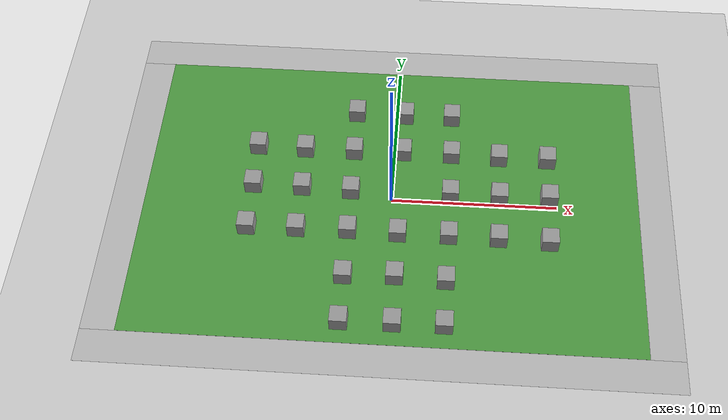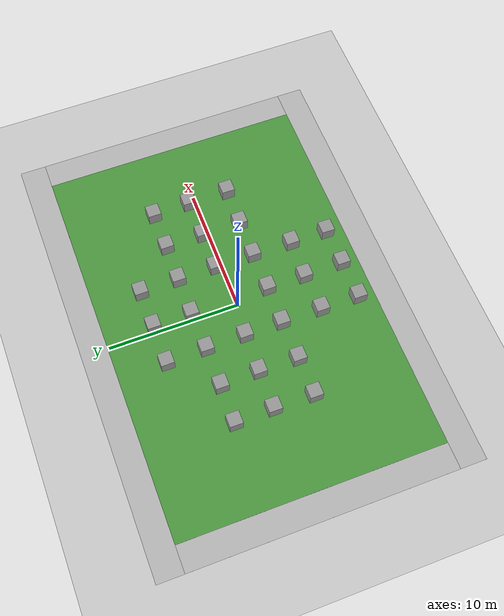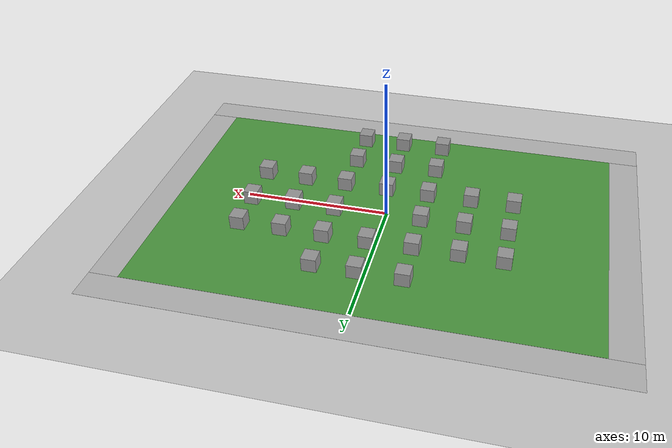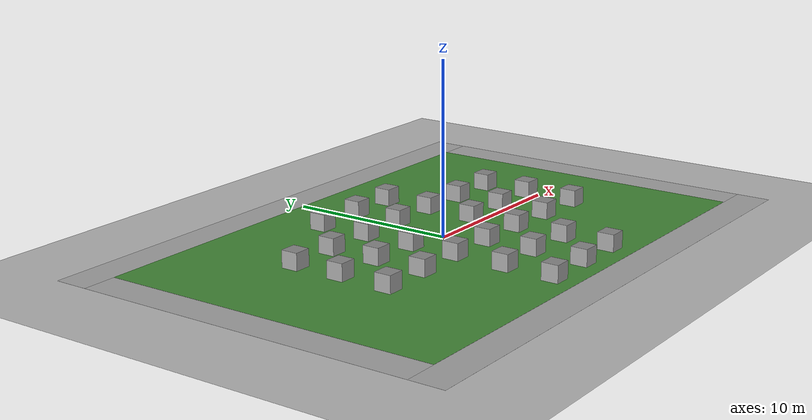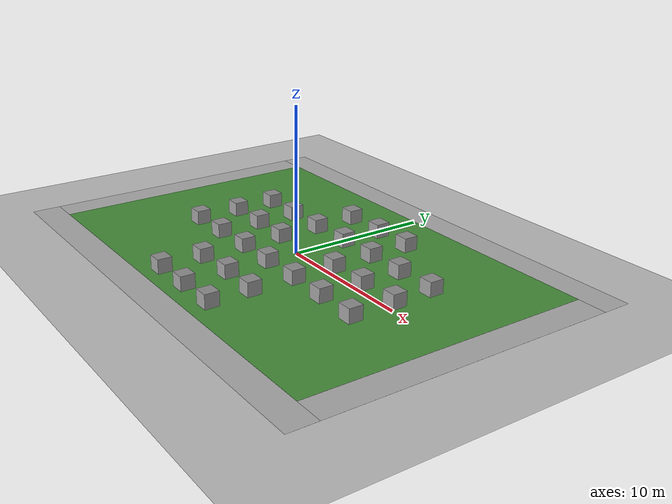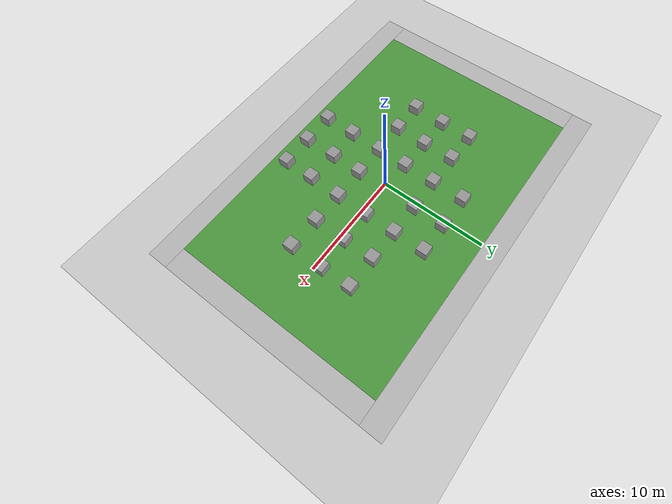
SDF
<sdf version="1.6">
 <world name="default">
  <plugin name="ardupilot_sitl_gazebo_plugin" filename="libardupilot_sitl_gazebo_plugin_rover.so">
   <UAV_MODEL>rover</UAV_MODEL>
  </plugin>
  <light name="sun" type="directional">
   <pose>0 0 10 0 -0 0</pose>
   <diffuse>0.8 0.8 0.8 1</diffuse>
   <specular>0.2 0.2 0.2 1</specular>
   <attenuation>
    <range>1000</range>
    <constant>0.9</constant>
    <linear>0.01</linear>
    <quadratic>0.001</quadratic>
   </attenuation>
   <direction>-0.5 0.1 -0.9</direction>
  </light>
  <model name="ground_plane">
   <static>1</static>
   <link name="link">
    <collision name="collision">
     <geometry><plane><normal>0 0 1</normal><size>100 100</size></plane></geometry>
     <surface><friction><ode><mu>100</mu><mu2>50</mu2></ode></friction></surface>
    </collision>
    <visual name="visual">
     <cast_shadows>0</cast_shadows>
     <geometry><plane><normal>0 0 1</normal><size>100 100</size></plane></geometry>
     <material>
      <script><uri>file://media/materials/scripts/gazebo.material</uri><name>Gazebo/Grey</name></script>
     </material>
    </visual>
   </link>
  </model>
  <gravity>0 0 -9.8</gravity>
  <magnetic_field>6e-06 2.3e-05 -4.2e-05</magnetic_field>
  <atmosphere type="adiabatic"/>
  <physics name="default_physics" default="0" type="ode">
   <max_step_size>0.001</max_step_size>
   <real_time_factor>1</real_time_factor>
   <real_time_update_rate>1000</real_time_update_rate>
  </physics>
  <scene><ambient>0.4 0.4 0.4 1</ambient><background>0.7 0.7 0.7 1</background><shadows>1</shadows></scene>
  <spherical_coordinates>
   <surface_model>EARTH_WGS84</surface_model>
   <latitude_deg>0</latitude_deg>
   <longitude_deg>0</longitude_deg>
   <elevation>0</elevation>
   <heading_deg>0</heading_deg>
  </spherical_coordinates>
  <model name="robocup_3d_field">
   <static>1</static>
   <link name="field">
    <pose>0 0 0.01 0 -0 0</pose>
    <collision name="collision">
     <geometry><plane><normal>0 0 1</normal><size>30 20</size></plane></geometry>
     <surface><friction><ode><mu>100</mu><mu2>50</mu2></ode></friction></surface>
    </collision>
    <visual name="base1">
     <pose>0 11 0.001 0 -0 0</pose>
     <cast_shadows>0</cast_shadows>
     <geometry><plane><normal>0 0 1</normal><size>34 2</size></plane></geometry>
     <material>
      <script>
       <uri>model://robocup_3Dsim_field/materials/scripts/</uri>
       <uri>model://robocup_3Dsim_field/materials/textures/</uri>
       <name>RoboCup/FieldBorder</name>
      </script>
     </material>
    </visual>
    <visual name="base2">
     <pose>0 -11 0.001 0 -0 0</pose>
     <cast_shadows>0</cast_shadows>
     <geometry><plane><normal>0 0 1</normal><size>34 2</size></plane></geometry>
     <material>
      <script>
       <uri>model://robocup_3Dsim_field/materials/scripts/</uri>
       <uri>model://robocup_3Dsim_field/materials/textures/</uri>
       <name>RoboCup/FieldBorder</name>
      </script>
     </material>
    </visual>
    <visual name="base3">
     <pose>16 0 0.001 0 -0 0</pose>
     <cast_shadows>0</cast_shadows>
     <geometry><plane><normal>0 0 1</normal><size>2 20</size></plane></geometry>
     <material>
      <script>
       <uri>model://robocup_3Dsim_field/materials/scripts/</uri>
       <uri>model://robocup_3Dsim_field/materials/textures/</uri>
       <name>RoboCup/FieldBorder</name>
      </script>
     </material>
    </visual>
    <visual name="base4">
     <pose>-16 0 0.001 0 -0 0</pose>
     <cast_shadows>0</cast_shadows>
     <geometry><plane><normal>0 0 1</normal><size>2 20</size></plane></geometry>
     <material>
      <script>
       <uri>model://robocup_3Dsim_field/materials/scripts/</uri>
       <uri>model://robocup_3Dsim_field/materials/textures/</uri>
       <name>RoboCup/FieldBorder</name>
      </script>
     </material>
    </visual>
    <visual name="carpet">
     <cast_shadows>0</cast_shadows>
     <geometry><plane><normal>0 0 1</normal><size>30 20</size></plane></geometry>
     <material>
      <script>
       <uri>model://robocup_3Dsim_field/materials/scripts/</uri>
       <uri>model://robocup_3Dsim_field/materials/textures/</uri>
       <name>RoboCup/Grass</name>
      </script>
     </material>
    </visual>
   </link>
   <pose>-0.031698 0.111229 0 0 -0 0</pose>
  </model>
  <model name="unit_box">
   <pose>3.48768 -8.49423 0.51 0 -0 0</pose>
   <link name="link">
    <inertial>
     <mass>1</mass>
     <inertia>
      <ixx>0.166667</ixx>
      <ixy>0</ixy>
      <ixz>0</ixz>
      <iyy>0.166667</iyy>
      <iyz>0</iyz>
      <izz>0.166667</izz>
     </inertia>
    </inertial>
    <collision name="collision"><geometry><box><size>1 1 1</size></box></geometry></collision>
    <visual name="visual">
     <geometry><box><size>1 1 1</size></box></geometry>
     <material>
      <script><name>Gazebo/Grey</name><uri>file://media/materials/scripts/gazebo.material</uri></script>
     </material>
    </visual>
   </link>
  </model>
  <model name="unit_box_0">
   <pose>0.513093 -2.52001 0.51 0 -0 0</pose>
   <link name="link">
    <inertial>
     <mass>1</mass>
     <inertia>
      <ixx>0.166667</ixx>
      <ixy>0</ixy>
      <ixz>0</ixz>
      <iyy>0.166667</iyy>
      <iyz>0</iyz>
      <izz>0.166667</izz>
     </inertia>
    </inertial>
    <collision name="collision"><geometry><box><size>1 1 1</size></box></geometry></collision>
    <visual name="visual">
     <geometry><box><size>1 1 1</size></box></geometry>
     <material>
      <script><name>Gazebo/Grey</name><uri>file://media/materials/scripts/gazebo.material</uri></script>
     </material>
    </visual>
   </link>
  </model>
  <model name="unit_box_1">
   <pose>0.519088 3.50905 0.51 0 -0 0</pose>
   <link name="link">
    <inertial>
     <mass>1</mass>
     <inertia>
      <ixx>0.166667</ixx>
      <ixy>0</ixy>
      <ixz>0</ixz>
      <iyy>0.166667</iyy>
      <iyz>0</iyz>
      <izz>0.166667</izz>
     </inertia>
    </inertial>
    <collision name="collision"><geometry><box><size>1 1 1</size></box></geometry></collision>
    <visual name="visual">
     <geometry><box><size>1 1 1</size></box></geometry>
     <material>
      <script><name>Gazebo/Grey</name><uri>file://media/materials/scripts/gazebo.material</uri></script>
     </material>
    </visual>
   </link>
  </model>
  <model name="unit_box_2">
   <pose>-2.47103 -2.46109 0.51 0 -0 0</pose>
   <link name="link">
    <inertial>
     <mass>1</mass>
     <inertia>
      <ixx>0.166667</ixx>
      <ixy>0</ixy>
      <ixz>0</ixz>
      <iyy>0.166667</iyy>
      <iyz>0</iyz>
      <izz>0.166667</izz>
     </inertia>
    </inertial>
    <collision name="collision"><geometry><box><size>1 1 1</size></box></geometry></collision>
    <visual name="visual">
     <geometry><box><size>1 1 1</size></box></geometry>
     <material>
      <script><name>Gazebo/Grey</name><uri>file://media/materials/scripts/gazebo.material</uri></script>
     </material>
    </visual>
   </link>
  </model>
  <model name="unit_box_3">
   <pose>-2.48524 -5.58628 0.51 0 -0 0</pose>
   <link name="link">
    <inertial>
     <mass>1</mass>
     <inertia>
      <ixx>0.166667</ixx>
      <ixy>0</ixy>
      <ixz>0</ixz>
      <iyy>0.166667</iyy>
      <iyz>0</iyz>
      <izz>0.166667</izz>
     </inertia>
    </inertial>
    <collision name="collision"><geometry><box><size>1 1 1</size></box></geometry></collision>
    <visual name="visual">
     <geometry><box><size>1 1 1</size></box></geometry>
     <material>
      <script><name>Gazebo/Grey</name><uri>file://media/materials/scripts/gazebo.material</uri></script>
     </material>
    </visual>
   </link>
  </model>
  <model name="unit_box_4">
   <pose>-2.49751 0.415021 0.51 0 -0 0</pose>
   <link name="link">
    <inertial>
     <mass>1</mass>
     <inertia>
      <ixx>0.166667</ixx>
      <ixy>0</ixy>
      <ixz>0</ixz>
      <iyy>0.166667</iyy>
      <iyz>0</iyz>
      <izz>0.166667</izz>
     </inertia>
    </inertial>
    <collision name="collision"><geometry><box><size>1 1 1</size></box></geometry></collision>
    <visual name="visual">
     <geometry><box><size>1 1 1</size></box></geometry>
     <material>
      <script><name>Gazebo/Grey</name><uri>file://media/materials/scripts/gazebo.material</uri></script>
     </material>
    </visual>
   </link>
  </model>
  <model name="unit_box_5">
   <pose>-2.51887 3.42572 0.51 0 -0 0</pose>
   <link name="link">
    <inertial>
     <mass>1</mass>
     <inertia>
      <ixx>0.166667</ixx>
      <ixy>0</ixy>
      <ixz>0</ixz>
      <iyy>0.166667</iyy>
      <iyz>0</iyz>
      <izz>0.166667</izz>
     </inertia>
    </inertial>
    <collision name="collision"><geometry><box><size>1 1 1</size></box></geometry></collision>
    <visual name="visual">
     <geometry><box><size>1 1 1</size></box></geometry>
     <material>
      <script><name>Gazebo/Grey</name><uri>file://media/materials/scripts/gazebo.material</uri></script>
     </material>
    </visual>
   </link>
  </model>
  <model name="unit_box_6">
   <pose>0.517128 6.44308 0.51 0 -0 0</pose>
   <link name="link">
    <inertial>
     <mass>1</mass>
     <inertia>
      <ixx>0.166667</ixx>
      <ixy>0</ixy>
      <ixz>0</ixz>
      <iyy>0.166667</iyy>
      <iyz>0</iyz>
      <izz>0.166667</izz>
     </inertia>
    </inertial>
    <collision name="collision"><geometry><box><size>1 1 1</size></box></geometry></collision>
    <visual name="visual">
     <geometry><box><size>1 1 1</size></box></geometry>
     <material>
      <script><name>Gazebo/Grey</name><uri>file://media/materials/scripts/gazebo.material</uri></script>
     </material>
    </visual>
   </link>
  </model>
  <model name="unit_box_7">
   <pose>-2.47232 -8.57481 0.51 0 -0 0</pose>
   <link name="link">
    <inertial>
     <mass>1</mass>
     <inertia>
      <ixx>0.166667</ixx>
      <ixy>0</ixy>
      <ixz>0</ixz>
      <iyy>0.166667</iyy>
      <iyz>0</iyz>
      <izz>0.166667</izz>
     </inertia>
    </inertial>
    <collision name="collision"><geometry><box><size>1 1 1</size></box></geometry></collision>
    <visual name="visual">
     <geometry><box><size>1 1 1</size></box></geometry>
     <material>
      <script><name>Gazebo/Grey</name><uri>file://media/materials/scripts/gazebo.material</uri></script>
     </material>
    </visual>
   </link>
  </model>
  <model name="unit_box_8">
   <pose>0.503096 -5.46822 0.51 0 -0 0</pose>
   <link name="link">
    <inertial>
     <mass>1</mass>
     <inertia>
      <ixx>0.166667</ixx>
      <ixy>0</ixy>
      <ixz>0</ixz>
      <iyy>0.166667</iyy>
      <iyz>0</iyz>
      <izz>0.166667</izz>
     </inertia>
    </inertial>
    <collision name="collision"><geometry><box><size>1 1 1</size></box></geometry></collision>
    <visual name="visual">
     <geometry><box><size>1 1 1</size></box></geometry>
     <material>
      <script><name>Gazebo/Grey</name><uri>file://media/materials/scripts/gazebo.material</uri></script>
     </material>
    </visual>
   </link>
  </model>
  <model name="unit_box_9">
   <pose>0.548945 -8.53618 0.51 0 -0 0</pose>
   <link name="link">
    <inertial>
     <mass>1</mass>
     <inertia>
      <ixx>0.166667</ixx>
      <ixy>0</ixy>
      <ixz>0</ixz>
      <iyy>0.166667</iyy>
      <iyz>0</iyz>
      <izz>0.166667</izz>
     </inertia>
    </inertial>
    <collision name="collision"><geometry><box><size>1 1 1</size></box></geometry></collision>
    <visual name="visual">
     <geometry><box><size>1 1 1</size></box></geometry>
     <material>
      <script><name>Gazebo/Grey</name><uri>file://media/materials/scripts/gazebo.material</uri></script>
     </material>
    </visual>
   </link>
  </model>
  <model name="unit_box_10">
   <pose>3.48364 -5.60309 0.51 0 -0 0</pose>
   <link name="link">
    <inertial>
     <mass>1</mass>
     <inertia>
      <ixx>0.166667</ixx>
      <ixy>0</ixy>
      <ixz>0</ixz>
      <iyy>0.166667</iyy>
      <iyz>0</iyz>
      <izz>0.166667</izz>
     </inertia>
    </inertial>
    <collision name="collision"><geometry><box><size>1 1 1</size></box></geometry></collision>
    <visual name="visual">
     <geometry><box><size>1 1 1</size></box></geometry>
     <material>
      <script><name>Gazebo/Grey</name><uri>file://media/materials/scripts/gazebo.material</uri></script>
     </material>
    </visual>
   </link>
  </model>
  <model name="unit_box_11">
   <pose>-2.57005 6.46756 0.51 0 -0 0</pose>
   <link name="link">
    <inertial>
     <mass>1</mass>
     <inertia>
      <ixx>0.166667</ixx>
      <ixy>0</ixy>
      <ixz>0</ixz>
      <iyy>0.166667</iyy>
      <iyz>0</iyz>
      <izz>0.166667</izz>
     </inertia>
    </inertial>
    <collision name="collision"><geometry><box><size>1 1 1</size></box></geometry></collision>
    <visual name="visual">
     <geometry><box><size>1 1 1</size></box></geometry>
     <material>
      <script><name>Gazebo/Grey</name><uri>file://media/materials/scripts/gazebo.material</uri></script>
     </material>
    </visual>
   </link>
  </model>
  <model name="unit_box_12">
   <pose>3.54281 -2.50176 0.51 0 -0 0</pose>
   <link name="link">
    <inertial>
     <mass>1</mass>
     <inertia>
      <ixx>0.166667</ixx>
      <ixy>0</ixy>
      <ixz>0</ixz>
      <iyy>0.166667</iyy>
      <iyz>0</iyz>
      <izz>0.166667</izz>
     </inertia>
    </inertial>
    <collision name="collision"><geometry><box><size>1 1 1</size></box></geometry></collision>
    <visual name="visual">
     <geometry><box><size>1 1 1</size></box></geometry>
     <material>
      <script><name>Gazebo/Grey</name><uri>file://media/materials/scripts/gazebo.material</uri></script>
     </material>
    </visual>
   </link>
  </model>
  <model name="unit_box_13">
   <pose>3.54899 0.530349 0.51 0 -0 0</pose>
   <link name="link">
    <inertial>
     <mass>1</mass>
     <inertia>
      <ixx>0.166667</ixx>
      <ixy>0</ixy>
      <ixz>0</ixz>
      <iyy>0.166667</iyy>
      <iyz>0</iyz>
      <izz>0.166667</izz>
     </inertia>
    </inertial>
    <collision name="collision"><geometry><box><size>1 1 1</size></box></geometry></collision>
    <visual name="visual">
     <geometry><box><size>1 1 1</size></box></geometry>
     <material>
      <script><name>Gazebo/Grey</name><uri>file://media/materials/scripts/gazebo.material</uri></script>
     </material>
    </visual>
   </link>
  </model>
  <model name="unit_box_14">
   <pose>3.51563 3.4947 0.51 0 -0 0</pose>
   <link name="link">
    <inertial>
     <mass>1</mass>
     <inertia>
      <ixx>0.166667</ixx>
      <ixy>0</ixy>
      <ixz>0</ixz>
      <iyy>0.166667</iyy>
      <iyz>0</iyz>
      <izz>0.166667</izz>
     </inertia>
    </inertial>
    <collision name="collision"><geometry><box><size>1 1 1</size></box></geometry></collision>
    <visual name="visual">
     <geometry><box><size>1 1 1</size></box></geometry>
     <material>
      <script><name>Gazebo/Grey</name><uri>file://media/materials/scripts/gazebo.material</uri></script>
     </material>
    </visual>
   </link>
  </model>
  <model name="unit_box_15">
   <pose>3.44849 6.45832 0.51 0 -0 0</pose>
   <link name="link">
    <inertial>
     <mass>1</mass>
     <inertia>
      <ixx>0.166667</ixx>
      <ixy>0</ixy>
      <ixz>0</ixz>
      <iyy>0.166667</iyy>
      <iyz>0</iyz>
      <izz>0.166667</izz>
     </inertia>
    </inertial>
    <collision name="collision"><geometry><box><size>1 1 1</size></box></geometry></collision>
    <visual name="visual">
     <geometry><box><size>1 1 1</size></box></geometry>
     <material>
      <script><name>Gazebo/Grey</name><uri>file://media/materials/scripts/gazebo.material</uri></script>
     </material>
    </visual>
   </link>
  </model>
  <model name="unit_box_16">
   <pose>-5.48398 0.508442 0.51 0 -0 0</pose>
   <link name="link">
    <inertial>
     <mass>1</mass>
     <inertia>
      <ixx>0.166667</ixx>
      <ixy>0</ixy>
      <ixz>0</ixz>
      <iyy>0.166667</iyy>
      <iyz>0</iyz>
      <izz>0.166667</izz>
     </inertia>
    </inertial>
    <collision name="collision"><geometry><box><size>1 1 1</size></box></geometry></collision>
    <visual name="visual">
     <geometry><box><size>1 1 1</size></box></geometry>
     <material>
      <script><name>Gazebo/Grey</name><uri>file://media/materials/scripts/gazebo.material</uri></script>
     </material>
    </visual>
   </link>
  </model>
  <model name="unit_box_17">
   <pose>-8.47491 0.539942 0.51 0 -0 0</pose>
   <link name="link">
    <inertial>
     <mass>1</mass>
     <inertia>
      <ixx>0.166667</ixx>
      <ixy>0</ixy>
      <ixz>0</ixz>
      <iyy>0.166667</iyy>
      <iyz>0</iyz>
      <izz>0.166667</izz>
     </inertia>
    </inertial>
    <collision name="collision"><geometry><box><size>1 1 1</size></box></geometry></collision>
    <visual name="visual">
     <geometry><box><size>1 1 1</size></box></geometry>
     <material>
      <script><name>Gazebo/Grey</name><uri>file://media/materials/scripts/gazebo.material</uri></script>
     </material>
    </visual>
   </link>
  </model>
  <model name="unit_box_18">
   <pose>-5.54136 -2.50807 0.51 0 -0 0</pose>
   <link name="link">
    <inertial>
     <mass>1</mass>
     <inertia>
      <ixx>0.166667</ixx>
      <ixy>0</ixy>
      <ixz>0</ixz>
      <iyy>0.166667</iyy>
      <iyz>0</iyz>
      <izz>0.166667</izz>
     </inertia>
    </inertial>
    <collision name="collision"><geometry><box><size>1 1 1</size></box></geometry></collision>
    <visual name="visual">
     <geometry><box><size>1 1 1</size></box></geometry>
     <material>
      <script><name>Gazebo/Grey</name><uri>file://media/materials/scripts/gazebo.material</uri></script>
     </material>
    </visual>
   </link>
  </model>
  <model name="unit_box_19">
   <pose>-8.50874 -2.52785 0.51 0 -0 0</pose>
   <link name="link">
    <inertial>
     <mass>1</mass>
     <inertia>
      <ixx>0.166667</ixx>
      <ixy>0</ixy>
      <ixz>0</ixz>
      <iyy>0.166667</iyy>
      <iyz>0</iyz>
      <izz>0.166667</izz>
     </inertia>
    </inertial>
    <collision name="collision"><geometry><box><size>1 1 1</size></box></geometry></collision>
    <visual name="visual">
     <geometry><box><size>1 1 1</size></box></geometry>
     <material>
      <script><name>Gazebo/Grey</name><uri>file://media/materials/scripts/gazebo.material</uri></script>
     </material>
    </visual>
   </link>
  </model>
  <model name="unit_box_20">
   <pose>-5.56946 3.4235 0.51 0 -0 0</pose>
   <link name="link">
    <inertial>
     <mass>1</mass>
     <inertia>
      <ixx>0.166667</ixx>
      <ixy>0</ixy>
      <ixz>0</ixz>
      <iyy>0.166667</iyy>
      <iyz>0</iyz>
      <izz>0.166667</izz>
     </inertia>
    </inertial>
    <collision name="collision"><geometry><box><size>1 1 1</size></box></geometry></collision>
    <visual name="visual">
     <geometry><box><size>1 1 1</size></box></geometry>
     <material>
      <script><name>Gazebo/Grey</name><uri>file://media/materials/scripts/gazebo.material</uri></script>
     </material>
    </visual>
   </link>
  </model>
  <model name="unit_box_21">
   <pose>-8.51845 3.48784 0.51 0 -0 0</pose>
   <link name="link">
    <inertial>
     <mass>1</mass>
     <inertia>
      <ixx>0.166667</ixx>
      <ixy>0</ixy>
      <ixz>0</ixz>
      <iyy>0.166667</iyy>
      <iyz>0</iyz>
      <izz>0.166667</izz>
     </inertia>
    </inertial>
    <collision name="collision"><geometry><box><size>1 1 1</size></box></geometry></collision>
    <visual name="visual">
     <geometry><box><size>1 1 1</size></box></geometry>
     <material>
      <script><name>Gazebo/Grey</name><uri>file://media/materials/scripts/gazebo.material</uri></script>
     </material>
    </visual>
   </link>
  </model>
  <model name="unit_box_22">
   <pose>6.46445 3.42934 0.51 0 -0 0</pose>
   <link name="link">
    <inertial>
     <mass>1</mass>
     <inertia>
      <ixx>0.166667</ixx>
      <ixy>0</ixy>
      <ixz>0</ixz>
      <iyy>0.166667</iyy>
      <iyz>0</iyz>
      <izz>0.166667</izz>
     </inertia>
    </inertial>
    <collision name="collision"><geometry><box><size>1 1 1</size></box></geometry></collision>
    <visual name="visual">
     <geometry><box><size>1 1 1</size></box></geometry>
     <material>
      <script><name>Gazebo/Grey</name><uri>file://media/materials/scripts/gazebo.material</uri></script>
     </material>
    </visual>
   </link>
  </model>
  <model name="unit_box_23">
   <pose>9.4489 3.43154 0.51 0 -0 0</pose>
   <link name="link">
    <inertial>
     <mass>1</mass>
     <inertia>
      <ixx>0.166667</ixx>
      <ixy>0</ixy>
      <ixz>0</ixz>
      <iyy>0.166667</iyy>
      <iyz>0</iyz>
      <izz>0.166667</izz>
     </inertia>
    </inertial>
    <collision name="collision"><geometry><box><size>1 1 1</size></box></geometry></collision>
    <visual name="visual">
     <geometry><box><size>1 1 1</size></box></geometry>
     <material>
      <script><name>Gazebo/Grey</name><uri>file://media/materials/scripts/gazebo.material</uri></script>
     </material>
    </visual>
   </link>
  </model>
  <model name="unit_box_24">
   <pose>6.51815 0.498926 0.51 0 -0 0</pose>
   <link name="link">
    <inertial>
     <mass>1</mass>
     <inertia>
      <ixx>0.166667</ixx>
      <ixy>0</ixy>
      <ixz>0</ixz>
      <iyy>0.166667</iyy>
      <iyz>0</iyz>
      <izz>0.166667</izz>
     </inertia>
    </inertial>
    <collision name="collision"><geometry><box><size>1 1 1</size></box></geometry></collision>
    <visual name="visual">
     <geometry><box><size>1 1 1</size></box></geometry>
     <material>
      <script><name>Gazebo/Grey</name><uri>file://media/materials/scripts/gazebo.material</uri></script>
     </material>
    </visual>
   </link>
  </model>
  <model name="unit_box_25">
   <pose>9.53616 0.555679 0.51 0 -0 0</pose>
   <link name="link">
    <inertial>
     <mass>1</mass>
     <inertia>
      <ixx>0.166667</ixx>
      <ixy>0</ixy>
      <ixz>0</ixz>
      <iyy>0.166667</iyy>
      <iyz>0</iyz>
      <izz>0.166667</izz>
     </inertia>
    </inertial>
    <collision name="collision"><geometry><box><size>1 1 1</size></box></geometry></collision>
    <visual name="visual">
     <geometry><box><size>1 1 1</size></box></geometry>
     <material>
      <script><name>Gazebo/Grey</name><uri>file://media/materials/scripts/gazebo.material</uri></script>
     </material>
    </visual>
   </link>
  </model>
  <model name="unit_box_26">
   <pose>6.49663 -2.5333 0.51 0 -0 0</pose>
   <link name="link">
    <inertial>
     <mass>1</mass>
     <inertia>
      <ixx>0.166667</ixx>
      <ixy>0</ixy>
      <ixz>0</ixz>
      <iyy>0.166667</iyy>
      <iyz>0</iyz>
      <izz>0.166667</izz>
     </inertia>
    </inertial>
    <collision name="collision"><geometry><box><size>1 1 1</size></box></geometry></collision>
    <visual name="visual">
     <geometry><box><size>1 1 1</size></box></geometry>
     <material>
      <script><name>Gazebo/Grey</name><uri>file://media/materials/scripts/gazebo.material</uri></script>
     </material>
    </visual>
   </link>
  </model>
  <model name="unit_box_27">
   <pose>9.51741 -2.61662 0.51 0 -0 0</pose>
   <link name="link">
    <inertial>
     <mass>1</mass>
     <inertia>
      <ixx>0.166667</ixx>
      <ixy>0</ixy>
      <ixz>0</ixz>
      <iyy>0.166667</iyy>
      <iyz>0</iyz>
      <izz>0.166667</izz>
     </inertia>
    </inertial>
    <collision name="collision"><geometry><box><size>1 1 1</size></box></geometry></collision>
    <visual name="visual">
     <geometry><box><size>1 1 1</size></box></geometry>
     <material>
      <script><name>Gazebo/Grey</name><uri>file://media/materials/scripts/gazebo.material</uri></script>
     </material>
    </visual>
   </link>
  </model>
 </world>
</sdf>
